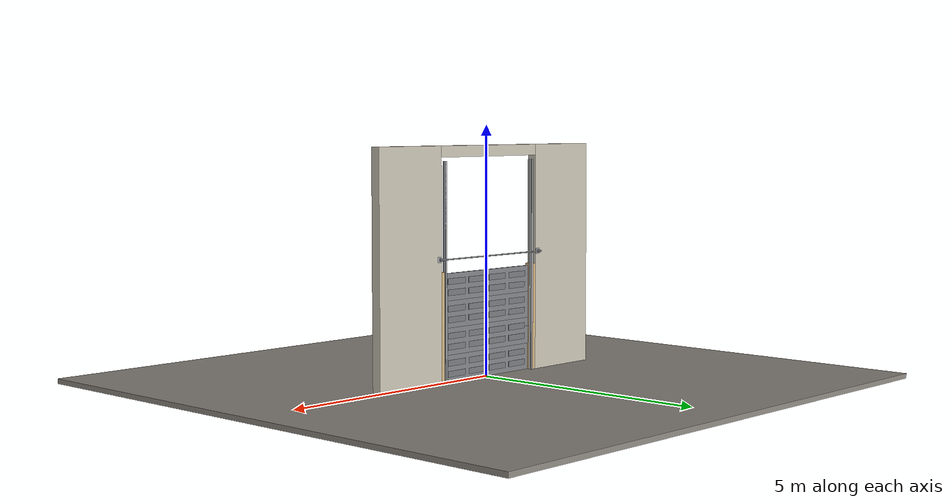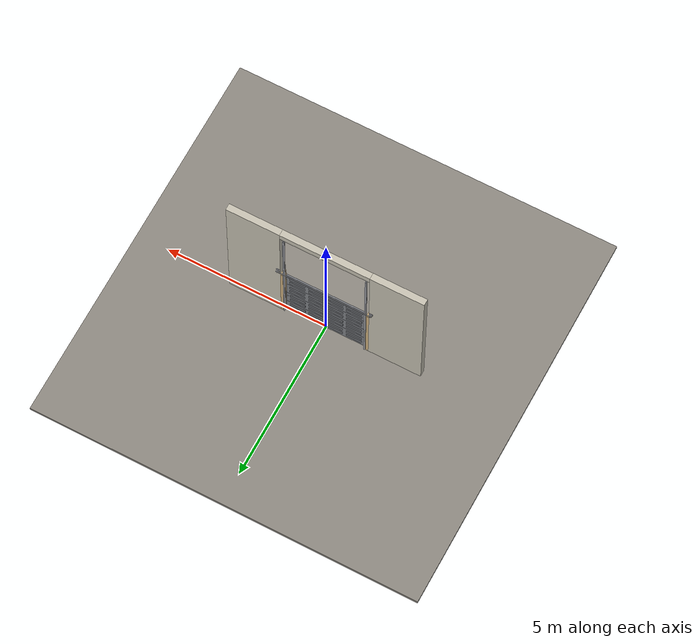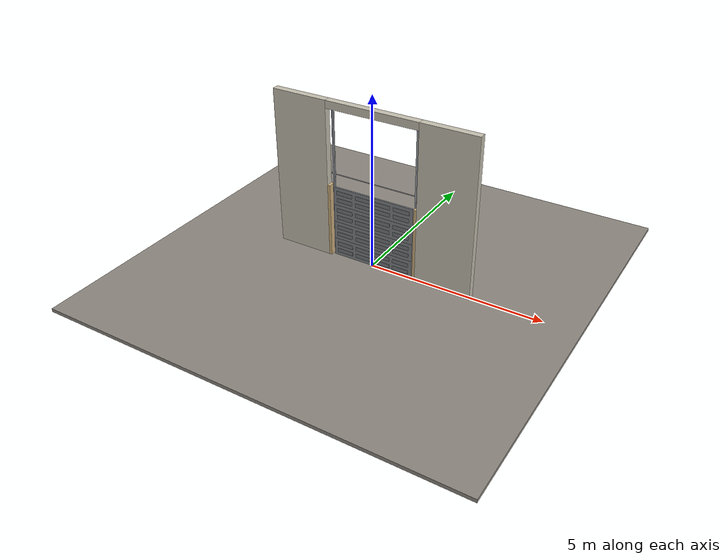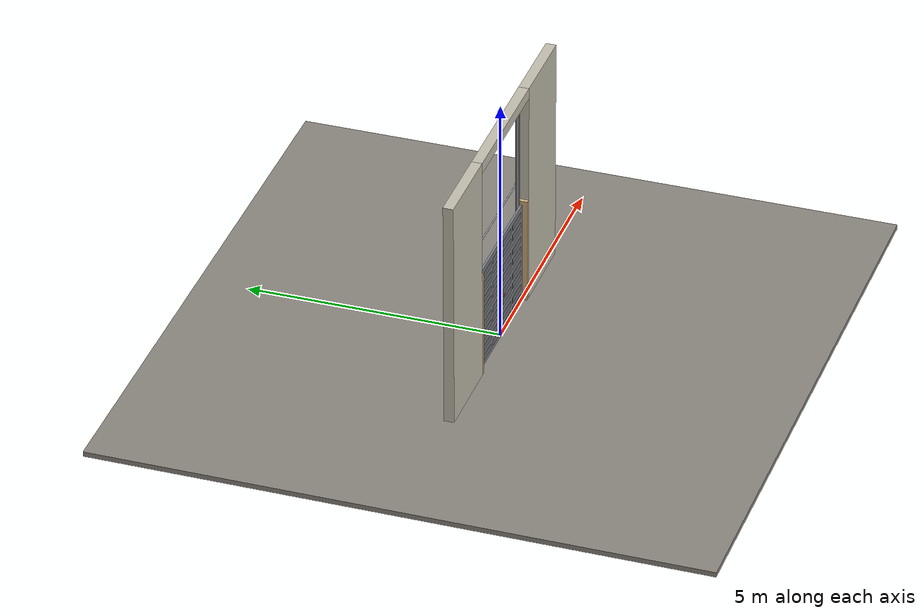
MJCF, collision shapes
<?xml version="1.0" ?>
<mujoco model="db0839_garage_sectional_simple">
  <compiler angle="radian" meshdir="../../hardware" texturedir="../../textures" autolimits="true" inertiafromgeom="false"/>
  <option timestep="0.002" integrator="implicitfast" cone="elliptic" impratio="10" noslip_iterations="3">
    <flag multiccd="enable"/>
  </option>
  <size memory="16M"/>
  <default>
    <geom condim="4" solref="0.005 1" solimp="0.95 0.99 0.001"/>
    <joint solreflimit="0.005 1" solimplimit="0.95 0.99 0.001"/>
    <tendon solreflimit="0.005 1"/>
    <equality solref="0.002 1"/>
  </default>
  <visual>
    <headlight ambient="0.4 0.4 0.4" diffuse="0.7 0.7 0.7" specular="0.2 0.2 0.2"/>
    <quality shadowsize="4096"/>
    <map znear="0.01" zfar="60"/>
  </visual>
  <asset>
    <mesh name="lever_01c630149d" file="lever_01c630149d.obj"/>
    <material name="mat_floor" rgba="0.55 0.53 0.5 1" specular="0.2" shininess="0.15" reflectance="0"/>
    <material name="mat_wall" rgba="0.78 0.76 0.7 1" specular="0.2" shininess="0.1" reflectance="0"/>
    <material name="mat_frame" rgba="0.82 0.7 0.5 1" specular="0.2" shininess="0.45" reflectance="0"/>
    <material name="mat_track" rgba="0.65 0.66 0.68 1" specular="0.74" shininess="0.5" reflectance="0.36"/>
    <material name="mat_section_0" rgba="0.5 0.51 0.53 1" specular="0.23" shininess="0.51" reflectance="0.02"/>
    <material name="mat_section_0_panel" rgba="0.46 0.469 0.488 1" specular="0.23" shininess="0.51" reflectance="0.02"/>
    <material name="mat_section_1" rgba="0.5 0.51 0.53 1" specular="0.23" shininess="0.51" reflectance="0.02"/>
    <material name="mat_section_1_panel" rgba="0.46 0.469 0.488 1" specular="0.23" shininess="0.51" reflectance="0.02"/>
    <material name="mat_hinge_line" rgba="0.2 0.2 0.2 1" specular="0.2" shininess="0.3" reflectance="0"/>
    <material name="mat_section_2" rgba="0.5 0.51 0.53 1" specular="0.23" shininess="0.51" reflectance="0.02"/>
    <material name="mat_section_2_panel" rgba="0.46 0.469 0.488 1" specular="0.23" shininess="0.51" reflectance="0.02"/>
    <material name="mat_section_3" rgba="0.5 0.51 0.53 1" specular="0.23" shininess="0.51" reflectance="0.02"/>
    <material name="mat_section_3_panel" rgba="0.46 0.469 0.488 1" specular="0.23" shininess="0.51" reflectance="0.02"/>
    <material name="mat_spring" rgba="0.55 0.56 0.58 1" specular="0.8" shininess="0.55" reflectance="0.4"/>
    <material name="mat_op_black_matte_metal" rgba="0.05 0.05 0.05 1" specular="0.38" shininess="0.3" reflectance="0.12"/>
    <material name="mat_trim" rgba="0.85 0.66 0.3 1" specular="0.8" shininess="0.75" reflectance="0.4"/>
    <material name="mat_lockbar" rgba="0.65 0.66 0.68 1" specular="0.74" shininess="0.5" reflectance="0.36"/>
    <texture name="skybox" type="skybox" builtin="gradient" rgb1="0.6 0.7 0.85" rgb2="0.9 0.92 0.95" width="256" height="256"/>
  </asset>
  <worldbody>
    <light name="sun" pos="1.5 -2.5 4" dir="-0.3 0.5 -0.8" directional="true" diffuse="0.8 0.8 0.8" specular="0.3 0.3 0.3" castshadow="true"/>
    <light name="fill" pos="-1.5 2.5 3" dir="0.3 -0.5 -0.7" directional="true" diffuse="0.35 0.35 0.4" castshadow="false"/>
    <camera name="robot_view" pos="0 -2.959375 1.918625" xyaxes="1 0 0 0 0.26963 0.962964" fovy="52"/>
    <camera name="far_view" pos="0 2.959375 1.918625" xyaxes="-1 0 0 0 -0.26963 0.962964" fovy="52"/>
    <camera name="iso" pos="2.249125 -2.485875 2.392125" xyaxes="0.741536 0.670913 0 -0.242917 0.268487 0.932151" fovy="46"/>
    <camera name="detail_handle" pos="0.2115 -1.1625 1.25" xyaxes="0.975133 0.221621 0 -0.065674 0.288965 0.955084" fovy="38"/>
    <geom name="floor" type="box" size="6 6 0.05" pos="0 0 -0.05" material="mat_floor" group="0" contype="1" conaffinity="1" friction="0.8 0.005 0.0001" density="2400"/>
    <geom name="wall_left" type="box" size="0.8175 0.1 2.305" pos="-2.1825 0 2.305" material="mat_wall" group="0" contype="1" conaffinity="1" friction="0.6 0.005 0.0001" density="800"/>
    <geom name="wall_right" type="box" size="0.8175 0.1 2.305" pos="2.1825 0 2.305" material="mat_wall" group="0" contype="1" conaffinity="1" friction="0.6 0.005 0.0001" density="800"/>
    <geom name="wall_header" type="box" size="1.365 0.1 0.11" pos="0 0 4.5" material="mat_wall" group="0" contype="1" conaffinity="1" friction="0.6 0.005 0.0001" density="800"/>
    <geom name="garage_jamb_l" type="box" size="0.04 0.1 1.09" pos="-1.325 0 1.09" material="mat_frame" group="0" contype="1" conaffinity="1" friction="0.6 0.005 0.0001" density="400"/>
    <geom name="garage_jamb_r" type="box" size="0.04 0.1 1.09" pos="1.325 0 1.09" material="mat_frame" group="0" contype="1" conaffinity="1" friction="0.6 0.005 0.0001" density="400"/>
    <geom name="track_l" type="box" size="0.004 0.033 2.155" pos="-1.27 0.0825 2.155" material="mat_track" group="0" contype="1" conaffinity="1" friction="0.6 0.005 0.0001" density="7850"/>
    <geom name="track_l_flange_n" type="box" size="0.022 0.004 2.155" pos="-1.252 0.0535 2.155" material="mat_track" group="0" contype="1" conaffinity="1" friction="0.6 0.005 0.0001" density="7850"/>
    <geom name="track_l_flange_p" type="box" size="0.022 0.004 2.155" pos="-1.252 0.1115 2.155" material="mat_track" group="0" contype="1" conaffinity="1" friction="0.6 0.005 0.0001" density="7850"/>
    <geom name="track_r" type="box" size="0.004 0.033 2.155" pos="1.27 0.0825 2.155" material="mat_track" group="0" contype="1" conaffinity="1" friction="0.6 0.005 0.0001" density="7850"/>
    <geom name="track_r_flange_n" type="box" size="0.022 0.004 2.155" pos="1.252 0.0535 2.155" material="mat_track" group="0" contype="1" conaffinity="1" friction="0.6 0.005 0.0001" density="7850"/>
    <geom name="track_r_flange_p" type="box" size="0.022 0.004 2.155" pos="1.252 0.1115 2.155" material="mat_track" group="0" contype="1" conaffinity="1" friction="0.6 0.005 0.0001" density="7850"/>
    <geom name="torsion_shaft" type="cylinder" size="0.013 1.475" pos="0 0.17 2.43" quat="0.707107 0 0.707107 0" material="mat_track" group="0" contype="1" conaffinity="1" friction="0.6 0.005 0.0001" density="7850"/>
    <geom name="torsion_bearing_plate_l" type="box" size="0.055 0.004 0.055" pos="-1.425 0.104 2.43" material="mat_track" group="1" contype="0" conaffinity="0" density="7850"/>
    <geom name="torsion_bearing_arm_l" type="box" size="0.008 0.049 0.03" pos="-1.425 0.139 2.43" material="mat_track" group="1" contype="0" conaffinity="0" density="7850"/>
    <geom name="torsion_bearing_plate_r" type="box" size="0.055 0.004 0.055" pos="1.425 0.104 2.43" material="mat_track" group="1" contype="0" conaffinity="0" density="7850"/>
    <geom name="torsion_bearing_arm_r" type="box" size="0.008 0.049 0.03" pos="1.425 0.139 2.43" material="mat_track" group="1" contype="0" conaffinity="0" density="7850"/>
    <site name="approach_point" pos="0 -2 0" quat="1 0 0 0" size="0.05" rgba="0.2 0.9 0.2 0.5" group="4"/>
    <site name="goal_point" pos="0 2 0" quat="1 0 0 0" size="0.05" rgba="0.2 0.9 0.2 0.5" group="4"/>
    <site name="door_plane_center" pos="0 0 1.09" quat="1 0 0 0" size="0.02" rgba="0.2 0.9 0.2 0.5" group="4"/>
    <body name="door" pos="0 0 0">
      <inertial pos="0 0 1.075" mass="56.38962" quat="0.707107 -0.707107 0 0" diaginertia="21.32879781 27.985241318 49.29498666"/>
      <joint name="door_slide" type="slide" axis="0 0 1" limited="true" range="0 2.08" damping="4.839481" frictionloss="27.845796" stiffness="48.211111" springref="6.933333" armature="0.5"/>
      <geom name="section_0_slab" type="box" size="1.22 0.0225 0.26625" pos="0 0 0.27625" material="mat_section_0" group="0" contype="1" conaffinity="1" friction="0.4 0.005 0.0001" density="1"/>
      <geom name="section_0_panel_0_n" type="box" size="0.2425 0.003 0.058125" pos="-0.8775 -0.0255 0.168125" material="mat_section_0_panel" group="1" contype="0" conaffinity="0" density="1"/>
      <geom name="section_0_panel_0_p" type="box" size="0.2425 0.003 0.058125" pos="-0.8775 0.0255 0.168125" material="mat_section_0_panel" group="1" contype="0" conaffinity="0" density="1"/>
      <geom name="section_0_panel_1_n" type="box" size="0.2425 0.003 0.058125" pos="-0.2925 -0.0255 0.168125" material="mat_section_0_panel" group="1" contype="0" conaffinity="0" density="1"/>
      <geom name="section_0_panel_1_p" type="box" size="0.2425 0.003 0.058125" pos="-0.2925 0.0255 0.168125" material="mat_section_0_panel" group="1" contype="0" conaffinity="0" density="1"/>
      <geom name="section_0_panel_2_n" type="box" size="0.2425 0.003 0.058125" pos="0.2925 -0.0255 0.168125" material="mat_section_0_panel" group="1" contype="0" conaffinity="0" density="1"/>
      <geom name="section_0_panel_2_p" type="box" size="0.2425 0.003 0.058125" pos="0.2925 0.0255 0.168125" material="mat_section_0_panel" group="1" contype="0" conaffinity="0" density="1"/>
      <geom name="section_0_panel_3_n" type="box" size="0.2425 0.003 0.058125" pos="0.8775 -0.0255 0.168125" material="mat_section_0_panel" group="1" contype="0" conaffinity="0" density="1"/>
      <geom name="section_0_panel_3_p" type="box" size="0.2425 0.003 0.058125" pos="0.8775 0.0255 0.168125" material="mat_section_0_panel" group="1" contype="0" conaffinity="0" density="1"/>
      <geom name="section_0_panel_4_n" type="box" size="0.2425 0.003 0.058125" pos="-0.8775 -0.0255 0.384375" material="mat_section_0_panel" group="1" contype="0" conaffinity="0" density="1"/>
      <geom name="section_0_panel_4_p" type="box" size="0.2425 0.003 0.058125" pos="-0.8775 0.0255 0.384375" material="mat_section_0_panel" group="1" contype="0" conaffinity="0" density="1"/>
      <geom name="section_0_panel_5_n" type="box" size="0.2425 0.003 0.058125" pos="-0.2925 -0.0255 0.384375" material="mat_section_0_panel" group="1" contype="0" conaffinity="0" density="1"/>
      <geom name="section_0_panel_5_p" type="box" size="0.2425 0.003 0.058125" pos="-0.2925 0.0255 0.384375" material="mat_section_0_panel" group="1" contype="0" conaffinity="0" density="1"/>
      <geom name="section_0_panel_6_n" type="box" size="0.2425 0.003 0.058125" pos="0.2925 -0.0255 0.384375" material="mat_section_0_panel" group="1" contype="0" conaffinity="0" density="1"/>
      <geom name="section_0_panel_6_p" type="box" size="0.2425 0.003 0.058125" pos="0.2925 0.0255 0.384375" material="mat_section_0_panel" group="1" contype="0" conaffinity="0" density="1"/>
      <geom name="section_0_panel_7_n" type="box" size="0.2425 0.003 0.058125" pos="0.8775 -0.0255 0.384375" material="mat_section_0_panel" group="1" contype="0" conaffinity="0" density="1"/>
      <geom name="section_0_panel_7_p" type="box" size="0.2425 0.003 0.058125" pos="0.8775 0.0255 0.384375" material="mat_section_0_panel" group="1" contype="0" conaffinity="0" density="1"/>
      <geom name="section_1_slab" type="box" size="1.22 0.0225 0.26625" pos="0 0 0.80875" material="mat_section_1" group="0" contype="1" conaffinity="1" friction="0.4 0.005 0.0001" density="1"/>
      <geom name="section_1_panel_0_n" type="box" size="0.2425 0.003 0.058125" pos="-0.8775 -0.0255 0.700625" material="mat_section_1_panel" group="1" contype="0" conaffinity="0" density="1"/>
      <geom name="section_1_panel_0_p" type="box" size="0.2425 0.003 0.058125" pos="-0.8775 0.0255 0.700625" material="mat_section_1_panel" group="1" contype="0" conaffinity="0" density="1"/>
      <geom name="section_1_panel_1_n" type="box" size="0.2425 0.003 0.058125" pos="-0.2925 -0.0255 0.700625" material="mat_section_1_panel" group="1" contype="0" conaffinity="0" density="1"/>
      <geom name="section_1_panel_1_p" type="box" size="0.2425 0.003 0.058125" pos="-0.2925 0.0255 0.700625" material="mat_section_1_panel" group="1" contype="0" conaffinity="0" density="1"/>
      <geom name="section_1_panel_2_n" type="box" size="0.2425 0.003 0.058125" pos="0.2925 -0.0255 0.700625" material="mat_section_1_panel" group="1" contype="0" conaffinity="0" density="1"/>
      <geom name="section_1_panel_2_p" type="box" size="0.2425 0.003 0.058125" pos="0.2925 0.0255 0.700625" material="mat_section_1_panel" group="1" contype="0" conaffinity="0" density="1"/>
      <geom name="section_1_panel_3_n" type="box" size="0.2425 0.003 0.058125" pos="0.8775 -0.0255 0.700625" material="mat_section_1_panel" group="1" contype="0" conaffinity="0" density="1"/>
      <geom name="section_1_panel_3_p" type="box" size="0.2425 0.003 0.058125" pos="0.8775 0.0255 0.700625" material="mat_section_1_panel" group="1" contype="0" conaffinity="0" density="1"/>
      <geom name="section_1_panel_4_n" type="box" size="0.2425 0.003 0.058125" pos="-0.8775 -0.0255 0.916875" material="mat_section_1_panel" group="1" contype="0" conaffinity="0" density="1"/>
      <geom name="section_1_panel_4_p" type="box" size="0.2425 0.003 0.058125" pos="-0.8775 0.0255 0.916875" material="mat_section_1_panel" group="1" contype="0" conaffinity="0" density="1"/>
      <geom name="section_1_panel_5_n" type="box" size="0.2425 0.003 0.058125" pos="-0.2925 -0.0255 0.916875" material="mat_section_1_panel" group="1" contype="0" conaffinity="0" density="1"/>
      <geom name="section_1_panel_5_p" type="box" size="0.2425 0.003 0.058125" pos="-0.2925 0.0255 0.916875" material="mat_section_1_panel" group="1" contype="0" conaffinity="0" density="1"/>
      <geom name="section_1_panel_6_n" type="box" size="0.2425 0.003 0.058125" pos="0.2925 -0.0255 0.916875" material="mat_section_1_panel" group="1" contype="0" conaffinity="0" density="1"/>
      <geom name="section_1_panel_6_p" type="box" size="0.2425 0.003 0.058125" pos="0.2925 0.0255 0.916875" material="mat_section_1_panel" group="1" contype="0" conaffinity="0" density="1"/>
      <geom name="section_1_panel_7_n" type="box" size="0.2425 0.003 0.058125" pos="0.8775 -0.0255 0.916875" material="mat_section_1_panel" group="1" contype="0" conaffinity="0" density="1"/>
      <geom name="section_1_panel_7_p" type="box" size="0.2425 0.003 0.058125" pos="0.8775 0.0255 0.916875" material="mat_section_1_panel" group="1" contype="0" conaffinity="0" density="1"/>
      <geom name="section_2_slab" type="box" size="1.22 0.0225 0.26625" pos="0 0 1.34125" material="mat_section_2" group="0" contype="1" conaffinity="1" friction="0.4 0.005 0.0001" density="1"/>
      <geom name="section_2_panel_0_n" type="box" size="0.2425 0.003 0.058125" pos="-0.8775 -0.0255 1.233125" material="mat_section_2_panel" group="1" contype="0" conaffinity="0" density="1"/>
      <geom name="section_2_panel_0_p" type="box" size="0.2425 0.003 0.058125" pos="-0.8775 0.0255 1.233125" material="mat_section_2_panel" group="1" contype="0" conaffinity="0" density="1"/>
      <geom name="section_2_panel_1_n" type="box" size="0.2425 0.003 0.058125" pos="-0.2925 -0.0255 1.233125" material="mat_section_2_panel" group="1" contype="0" conaffinity="0" density="1"/>
      <geom name="section_2_panel_1_p" type="box" size="0.2425 0.003 0.058125" pos="-0.2925 0.0255 1.233125" material="mat_section_2_panel" group="1" contype="0" conaffinity="0" density="1"/>
      <geom name="section_2_panel_2_n" type="box" size="0.2425 0.003 0.058125" pos="0.2925 -0.0255 1.233125" material="mat_section_2_panel" group="1" contype="0" conaffinity="0" density="1"/>
      <geom name="section_2_panel_2_p" type="box" size="0.2425 0.003 0.058125" pos="0.2925 0.0255 1.233125" material="mat_section_2_panel" group="1" contype="0" conaffinity="0" density="1"/>
      <geom name="section_2_panel_3_n" type="box" size="0.2425 0.003 0.058125" pos="0.8775 -0.0255 1.233125" material="mat_section_2_panel" group="1" contype="0" conaffinity="0" density="1"/>
      <geom name="section_2_panel_3_p" type="box" size="0.2425 0.003 0.058125" pos="0.8775 0.0255 1.233125" material="mat_section_2_panel" group="1" contype="0" conaffinity="0" density="1"/>
      <geom name="section_2_panel_4_n" type="box" size="0.2425 0.003 0.058125" pos="-0.8775 -0.0255 1.449375" material="mat_section_2_panel" group="1" contype="0" conaffinity="0" density="1"/>
      <geom name="section_2_panel_4_p" type="box" size="0.2425 0.003 0.058125" pos="-0.8775 0.0255 1.449375" material="mat_section_2_panel" group="1" contype="0" conaffinity="0" density="1"/>
      <geom name="section_2_panel_5_n" type="box" size="0.2425 0.003 0.058125" pos="-0.2925 -0.0255 1.449375" material="mat_section_2_panel" group="1" contype="0" conaffinity="0" density="1"/>
      <geom name="section_2_panel_5_p" type="box" size="0.2425 0.003 0.058125" pos="-0.2925 0.0255 1.449375" material="mat_section_2_panel" group="1" contype="0" conaffinity="0" density="1"/>
      <geom name="section_2_panel_6_n" type="box" size="0.2425 0.003 0.058125" pos="0.2925 -0.0255 1.449375" material="mat_section_2_panel" group="1" contype="0" conaffinity="0" density="1"/>
      <geom name="section_2_panel_6_p" type="box" size="0.2425 0.003 0.058125" pos="0.2925 0.0255 1.449375" material="mat_section_2_panel" group="1" contype="0" conaffinity="0" density="1"/>
      <geom name="section_2_panel_7_n" type="box" size="0.2425 0.003 0.058125" pos="0.8775 -0.0255 1.449375" material="mat_section_2_panel" group="1" contype="0" conaffinity="0" density="1"/>
      <geom name="section_2_panel_7_p" type="box" size="0.2425 0.003 0.058125" pos="0.8775 0.0255 1.449375" material="mat_section_2_panel" group="1" contype="0" conaffinity="0" density="1"/>
      <geom name="section_3_slab" type="box" size="1.22 0.0225 0.26625" pos="0 0 1.87375" material="mat_section_3" group="0" contype="1" conaffinity="1" friction="0.4 0.005 0.0001" density="1"/>
      <geom name="section_3_panel_0_n" type="box" size="0.2425 0.003 0.058125" pos="-0.8775 -0.0255 1.765625" material="mat_section_3_panel" group="1" contype="0" conaffinity="0" density="1"/>
      <geom name="section_3_panel_0_p" type="box" size="0.2425 0.003 0.058125" pos="-0.8775 0.0255 1.765625" material="mat_section_3_panel" group="1" contype="0" conaffinity="0" density="1"/>
      <geom name="section_3_panel_1_n" type="box" size="0.2425 0.003 0.058125" pos="-0.2925 -0.0255 1.765625" material="mat_section_3_panel" group="1" contype="0" conaffinity="0" density="1"/>
      <geom name="section_3_panel_1_p" type="box" size="0.2425 0.003 0.058125" pos="-0.2925 0.0255 1.765625" material="mat_section_3_panel" group="1" contype="0" conaffinity="0" density="1"/>
      <geom name="section_3_panel_2_n" type="box" size="0.2425 0.003 0.058125" pos="0.2925 -0.0255 1.765625" material="mat_section_3_panel" group="1" contype="0" conaffinity="0" density="1"/>
      <geom name="section_3_panel_2_p" type="box" size="0.2425 0.003 0.058125" pos="0.2925 0.0255 1.765625" material="mat_section_3_panel" group="1" contype="0" conaffinity="0" density="1"/>
      <geom name="section_3_panel_3_n" type="box" size="0.2425 0.003 0.058125" pos="0.8775 -0.0255 1.765625" material="mat_section_3_panel" group="1" contype="0" conaffinity="0" density="1"/>
      <geom name="section_3_panel_3_p" type="box" size="0.2425 0.003 0.058125" pos="0.8775 0.0255 1.765625" material="mat_section_3_panel" group="1" contype="0" conaffinity="0" density="1"/>
      <geom name="section_3_panel_4_n" type="box" size="0.2425 0.003 0.058125" pos="-0.8775 -0.0255 1.981875" material="mat_section_3_panel" group="1" contype="0" conaffinity="0" density="1"/>
      <geom name="section_3_panel_4_p" type="box" size="0.2425 0.003 0.058125" pos="-0.8775 0.0255 1.981875" material="mat_section_3_panel" group="1" contype="0" conaffinity="0" density="1"/>
      <geom name="section_3_panel_5_n" type="box" size="0.2425 0.003 0.058125" pos="-0.2925 -0.0255 1.981875" material="mat_section_3_panel" group="1" contype="0" conaffinity="0" density="1"/>
      <geom name="section_3_panel_5_p" type="box" size="0.2425 0.003 0.058125" pos="-0.2925 0.0255 1.981875" material="mat_section_3_panel" group="1" contype="0" conaffinity="0" density="1"/>
      <geom name="section_3_panel_6_n" type="box" size="0.2425 0.003 0.058125" pos="0.2925 -0.0255 1.981875" material="mat_section_3_panel" group="1" contype="0" conaffinity="0" density="1"/>
      <geom name="section_3_panel_6_p" type="box" size="0.2425 0.003 0.058125" pos="0.2925 0.0255 1.981875" material="mat_section_3_panel" group="1" contype="0" conaffinity="0" density="1"/>
      <geom name="section_3_panel_7_n" type="box" size="0.2425 0.003 0.058125" pos="0.8775 -0.0255 1.981875" material="mat_section_3_panel" group="1" contype="0" conaffinity="0" density="1"/>
      <geom name="section_3_panel_7_p" type="box" size="0.2425 0.003 0.058125" pos="0.8775 0.0255 1.981875" material="mat_section_3_panel" group="1" contype="0" conaffinity="0" density="1"/>
      <body name="t_handle" pos="0 0 0.9">
        <inertial pos="0 -0.051615 0" mass="0.254469" quat="1 0 0 0" diaginertia="0.000075558 0.000207252 0.000256627"/>
        <joint name="t_handle_hinge" type="hinge" axis="0 -1 0" limited="true" range="0 1.5708" damping="0.127804" frictionloss="0.028" stiffness="0.4" springref="-0.75" armature="0.01"/>
        <geom name="t_handle_t_n" type="mesh" mesh="lever_01c630149d" pos="0 -0.0225 0" quat="0.707107 0.707107 0 0" material="mat_op_black_matte_metal" group="1" contype="0" conaffinity="0" density="3000"/>
        <geom name="t_handle_t_col_n" type="box" size="0.055 0.008 0.008" pos="0 -0.0625 0" material="mat_op_black_matte_metal" group="3" contype="1" conaffinity="1" rgba="0.8 0.3 0.3 0.25" friction="0.6 0.005 0.0001" density="3000"/>
        <site name="t_handle_grip_n" pos="-0.0385 -0.0625 0" quat="1 0 0 0" size="0.012" rgba="0.2 0.9 0.2 0.5" group="4"/>
      </body>
      <body name="lock_bar_l" pos="-1.17 0.03 0.9">
        <inertial pos="-0.04 0 0" mass="0.095884" quat="0 0 0.707107 0.707107" diaginertia="0.0000017 0.00009424 0.00009424"/>
        <joint name="lock_bar_l_slide" type="slide" axis="1 0 0" limited="true" range="0 0.03" damping="2" frictionloss="1" armature="0.1"/>
        <geom name="lock_bar_l_geom" type="capsule" size="0.006 0.05" pos="-0.04 0 0" quat="0.707107 0 0.707107 0" material="mat_lockbar" group="1" contype="0" conaffinity="0" density="7850"/>
      </body>
      <body name="lock_bar_r" pos="1.17 0.03 0.9">
        <inertial pos="0.04 0 0" mass="0.095884" quat="0 0 0.707107 0.707107" diaginertia="0.0000017 0.00009424 0.00009424"/>
        <joint name="lock_bar_r_slide" type="slide" axis="-1 0 0" limited="true" range="0 0.03" damping="2" frictionloss="1" armature="0.1"/>
        <geom name="lock_bar_r_geom" type="capsule" size="0.006 0.05" pos="0.04 0 0" quat="0.707107 0 0.707107 0" material="mat_lockbar" group="1" contype="0" conaffinity="0" density="7850"/>
      </body>
    </body>
  </worldbody>
  <equality>
    <joint name="lock_bar_l_couple" joint1="lock_bar_l_slide" joint2="t_handle_hinge" polycoef="0 0.019099 0 0 0" active="true"/>
    <joint name="lock_bar_r_couple" joint1="lock_bar_r_slide" joint2="t_handle_hinge" polycoef="0 0.019099 0 0 0" active="true"/>
  </equality>
  <sensor>
    <jointpos name="door_slide_pos" joint="door_slide"/>
    <jointvel name="door_slide_vel" joint="door_slide"/>
    <jointpos name="t_handle_hinge_pos" joint="t_handle_hinge"/>
    <jointvel name="t_handle_hinge_vel" joint="t_handle_hinge"/>
    <jointpos name="lock_bar_l_slide_pos" joint="lock_bar_l_slide"/>
    <jointvel name="lock_bar_l_slide_vel" joint="lock_bar_l_slide"/>
    <jointpos name="lock_bar_r_slide_pos" joint="lock_bar_r_slide"/>
    <jointvel name="lock_bar_r_slide_vel" joint="lock_bar_r_slide"/>
  </sensor>
</mujoco>
